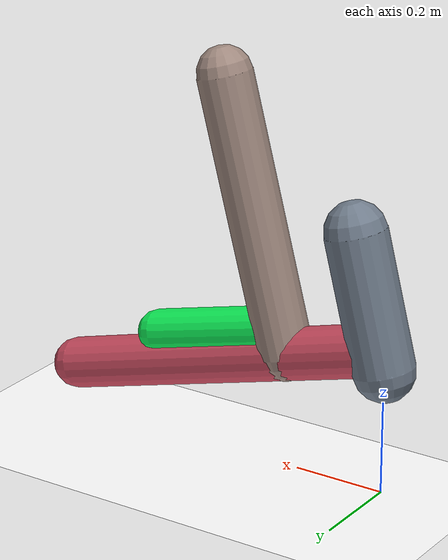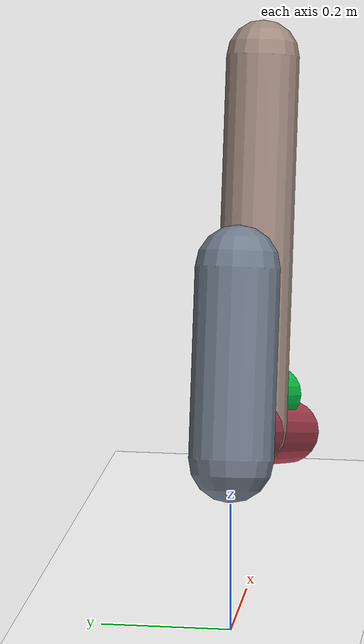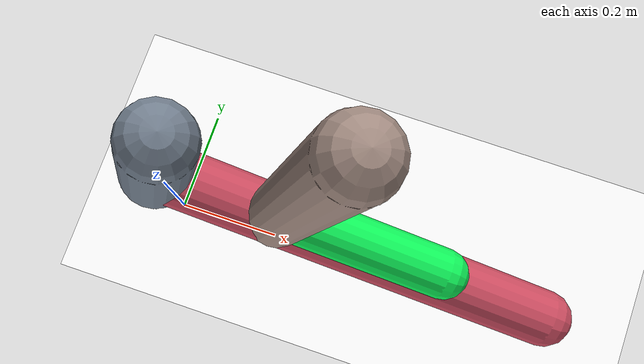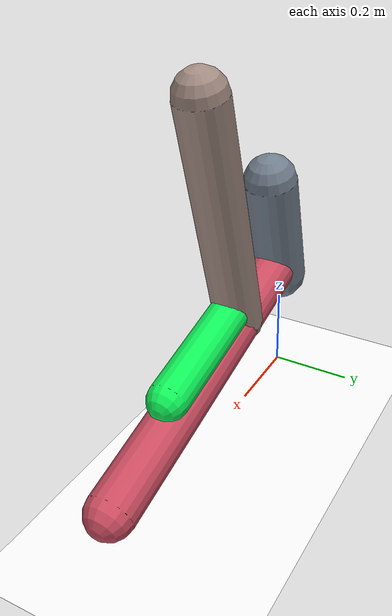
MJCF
<mujoco model="morphology">
  <option timestep="0.01"/>
  <default>
    <default class="/"/>
  </default>
  <asset>
    <texture name="texplane" type="2d" builtin="checker" rgb1="0.1 0.2 0.3" rgb2="0.2 0.3 0.4" width="300" height="300"/>
    <material name="MatPlane" class="/" texture="texplane" texrepeat="20 20" specular="1" shininess="1" reflectance="0.5"/>
  </asset>
  <worldbody>
    <light name="//unnamed_light_0" class="/" directional="true" pos="0 0 1.5" dir="0 0 -1.3" cutoff="1e+02" exponent="1" diffuse="1 1 1" specular="0.1 0.1 0.1"/>
    <geom name="ground" class="/" type="plane" size="15 15 0.5" material="MatPlane" rgba="1 1 1 1"/>
    <body name="body" pos="0 0 0.27">
      <geom name="geom0" class="/" type="capsule" contype="1" conaffinity="1" condim="3" size="0.065" rgba="0.45 0.5 0.56 1" friction="0.4 0.1 0.1" fromto="0 0 0 0.072 0 0.28"/>
      <body name="body1" pos="0.011 0 0.042">
        <geom name="geom1" class="/" type="capsule" contype="1" conaffinity="1" condim="3" size="0.055" rgba="0.8 0.3 0.38 1" friction="0.4 0.1 0.1" fromto="0 0 0 0.75 0 -0.21"/>
        <body name="body2" pos="0.22 0 -0.06">
          <geom name="geom2" class="/" type="capsule" contype="1" conaffinity="1" condim="3" size="0.058" rgba="0.64 0.55 0.51 1" friction="0.4 0.1 0.1" fromto="0 0 0 0.15 0 0.57"/>
          <body name="body3" pos="0.014 0 0.053">
            <geom name="geom3" class="/" type="capsule" contype="1" conaffinity="1" condim="3" size="0.047" rgba="0.056 0.96 0.35 1" friction="0.4 0.1 0.1" fromto="0 0 0 0.3 0 -0.078"/>
            <joint name="joint3" class="/" type="hinge" axis="0 1 0" limited="true" stiffness="20" range="-55 55" armature="0.1" damping="2"/>
          </body>
          <joint name="joint2" class="/" type="hinge" axis="0 1 0" limited="true" stiffness="20" range="-68 68" armature="0.1" damping="2"/>
        </body>
        <joint name="joint1" class="/" type="hinge" axis="0 1 0" limited="true" stiffness="20" range="-48 48" armature="0.1" damping="2"/>
      </body>
      <joint name="rootx" class="/" type="slide" axis="1 0 0" limited="false" stiffness="0" armature="0" damping="0"/>
      <joint name="rootz" class="/" type="slide" axis="0 0 1" limited="false" stiffness="0" armature="0" damping="0"/>
      <joint name="rooty" class="/" type="hinge" axis="0 1 0" limited="false" stiffness="0" armature="0" damping="0"/>
    </body>
  </worldbody>
  <actuator>
    <motor name="motor3" class="/" ctrllimited="true" ctrlrange="-1 1" gear="1.8e+02" joint="joint3"/>
    <motor name="motor2" class="/" ctrllimited="true" ctrlrange="-1 1" gear="1.6e+02" joint="joint2"/>
    <motor name="motor1" class="/" ctrllimited="true" ctrlrange="-1 1" gear="1.5e+02" joint="joint1"/>
  </actuator>
  <sensor>
    <subtreelinvel name="velocity" body="body"/>
  </sensor>
</mujoco>
